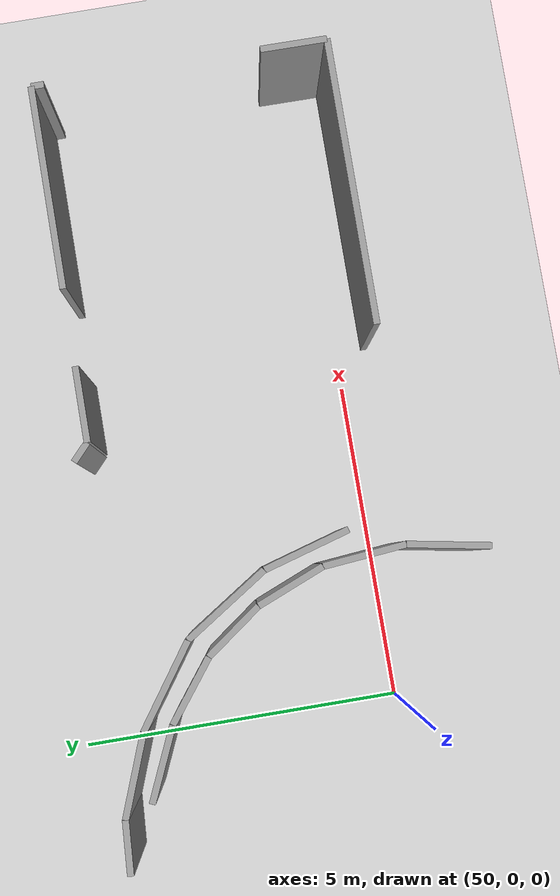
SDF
<sdf version="1.6">
 <world name="default">
  <model name="ground_plane">
   <static>1</static>
   <link name="link">
    <collision name="collision">
     <geometry><plane><normal>0 0 1</normal><size>100 100</size></plane></geometry>
     <surface><friction><ode><mu>100</mu><mu2>50</mu2></ode></friction></surface>
    </collision>
    <visual name="visual">
     <cast_shadows>0</cast_shadows>
     <geometry><plane><normal>0 0 1</normal><size>100 100</size></plane></geometry>
     <material>
      <script><uri>file://media/materials/scripts/gazebo.material</uri><name>Gazebo/Grey</name></script>
     </material>
    </visual>
   </link>
  </model>
  <model name="50041186">
   <static>1</static>
   <link name="Wall_160">
    <collision name="Wall_160_Collision">
     <geometry><box><size>1.1537353107 0.1 2.5</size></box></geometry>
     <pose>0.576867655352 0 1.25 0 0 0</pose>
    </collision>
    <visual name="Wall_160_Visual">
     <pose>0.576867655352 0 1.25 0 0 0</pose>
     <geometry><box><size>1.1537353107 0.1 2.5</size></box></geometry>
     <material>
      <script><uri>file://media/materials/scripts/gazebo.material</uri><name>Gazebo/Grey</name></script>
      <ambient>1 1 1 1</ambient>
     </material>
    </visual>
    <pose>109.183690306 -4.41377122005 0 0 0 -0.41728605494</pose>
   </link>
   <link name="Wall_161">
    <collision name="Wall_161_Collision">
     <geometry><box><size>1.09943733817 0.1 2.5</size></box></geometry>
     <pose>0.549718669087 0 1.25 0 0 0</pose>
    </collision>
    <visual name="Wall_161_Visual">
     <pose>0.549718669087 0 1.25 0 0 0</pose>
     <geometry><box><size>1.09943733817 0.1 2.5</size></box></geometry>
     <material>
      <script><uri>file://media/materials/scripts/gazebo.material</uri><name>Gazebo/Grey</name></script>
      <ambient>1 1 1 1</ambient>
     </material>
    </visual>
    <pose>110.238426146 -4.88135808345 0 0 0 -0.653013856082</pose>
   </link>
   <link name="Wall_162">
    <collision name="Wall_162_Collision">
     <geometry><box><size>1.02751432107 0.1 2.5</size></box></geometry>
     <pose>0.513757160534 0 1.25 0 0 0</pose>
    </collision>
    <visual name="Wall_162_Visual">
     <pose>0.513757160534 0 1.25 0 0 0</pose>
     <geometry><box><size>1.02751432107 0.1 2.5</size></box></geometry>
     <material>
      <script><uri>file://media/materials/scripts/gazebo.material</uri><name>Gazebo/Grey</name></script>
      <ambient>1 1 1 1</ambient>
     </material>
    </visual>
    <pose>111.111661114 -5.54935744883 0 0 0 -0.940710433335</pose>
   </link>
   <link name="Wall_163">
    <collision name="Wall_163_Collision">
     <geometry><box><size>1.09609186427 0.1 2.5</size></box></geometry>
     <pose>0.548045932135 0 1.25 0 0 0</pose>
    </collision>
    <visual name="Wall_163_Visual">
     <pose>0.548045932135 0 1.25 0 0 0</pose>
     <geometry><box><size>1.09609186427 0.1 2.5</size></box></geometry>
     <material>
      <script><uri>file://media/materials/scripts/gazebo.material</uri><name>Gazebo/Grey</name></script>
      <ambient>1 1 1 1</ambient>
     </material>
    </visual>
    <pose>111.717087101 -6.37956528637 0 0 0 -1.18620439022</pose>
   </link>
   <link name="Wall_164">
    <collision name="Wall_164_Collision">
     <geometry><box><size>1.25350013337 0.1 2.5</size></box></geometry>
     <pose>0.626750066684 0 1.25 0 0 0</pose>
    </collision>
    <visual name="Wall_164_Visual">
     <pose>0.626750066684 0 1.25 0 0 0</pose>
     <geometry><box><size>1.25350013337 0.1 2.5</size></box></geometry>
     <material>
      <script><uri>file://media/materials/scripts/gazebo.material</uri><name>Gazebo/Grey</name></script>
      <ambient>1 1 1 1</ambient>
     </material>
    </visual>
    <pose>112.128319848 -7.39558940187 0 0 0 -1.47852300548</pose>
   </link>
   <link name="Wall_165">
    <collision name="Wall_165_Collision">
     <geometry><box><size>1.24686918738 0.1 2.5</size></box></geometry>
     <pose>0.623434593692 0 1.25 0 0 0</pose>
    </collision>
    <visual name="Wall_165_Visual">
     <pose>0.623434593692 0 1.25 0 0 0</pose>
     <geometry><box><size>1.24686918738 0.1 2.5</size></box></geometry>
     <material>
      <script><uri>file://media/materials/scripts/gazebo.material</uri><name>Gazebo/Grey</name></script>
      <ambient>1 1 1 1</ambient>
     </material>
    </visual>
    <pose>112.243820403 -8.64375694114 0 0 0 -1.75196090721</pose>
   </link>
   <link name="Wall_186">
    <collision name="Wall_186_Collision">
     <geometry><box><size>4.36744407425 0.1 2.5</size></box></geometry>
     <pose>2.18372203713 0 1.25 0 0 0</pose>
    </collision>
    <visual name="Wall_186_Visual">
     <pose>2.18372203713 0 1.25 0 0 0</pose>
     <geometry><box><size>4.36744407425 0.1 2.5</size></box></geometry>
     <material>
      <script><uri>file://media/materials/scripts/gazebo.material</uri><name>Gazebo/Grey</name></script>
      <ambient>1 1 1 1</ambient>
     </material>
    </visual>
    <pose>119.861780105 -8.7743614152 0 0 0 3.14159265359</pose>
   </link>
   <link name="Wall_189">
    <collision name="Wall_189_Collision">
     <geometry><box><size>1.35960191555 0.1 2.5</size></box></geometry>
     <pose>0.679800957777 0 1.25 0 0 0</pose>
    </collision>
    <visual name="Wall_189_Visual">
     <pose>0.679800957777 0 1.25 0 0 0</pose>
     <geometry><box><size>1.35960191555 0.1 2.5</size></box></geometry>
     <material>
      <script><uri>file://media/materials/scripts/gazebo.material</uri><name>Gazebo/Grey</name></script>
      <ambient>1 1 1 1</ambient>
     </material>
    </visual>
    <pose>112.592860543 -7.85276852293 0 0 0 1.85173754716</pose>
   </link>
   <link name="Wall_190">
    <collision name="Wall_190_Collision">
     <geometry><box><size>1.49943821931 0.1 2.5</size></box></geometry>
     <pose>0.749719109654 0 1.25 0 0 0</pose>
    </collision>
    <visual name="Wall_190_Visual">
     <pose>0.749719109654 0 1.25 0 0 0</pose>
     <geometry><box><size>1.49943821931 0.1 2.5</size></box></geometry>
     <material>
      <script><uri>file://media/materials/scripts/gazebo.material</uri><name>Gazebo/Grey</name></script>
      <ambient>1 1 1 1</ambient>
     </material>
    </visual>
    <pose>112.215897192 -6.54646993495 0 0 0 2.14936103998</pose>
   </link>
   <link name="Wall_191">
    <collision name="Wall_191_Collision">
     <geometry><box><size>1.45806440451 0.1 2.5</size></box></geometry>
     <pose>0.729032202257 0 1.25 0 0 0</pose>
    </collision>
    <visual name="Wall_191_Visual">
     <pose>0.729032202257 0 1.25 0 0 0</pose>
     <geometry><box><size>1.45806440451 0.1 2.5</size></box></geometry>
     <material>
      <script><uri>file://media/materials/scripts/gazebo.material</uri><name>Gazebo/Grey</name></script>
      <ambient>1 1 1 1</ambient>
     </material>
    </visual>
    <pose>111.395970173 -5.29106774552 0 0 0 2.52615996905</pose>
   </link>
   <link name="Wall_192">
    <collision name="Wall_192_Collision">
     <geometry><box><size>1.26561071731 0.1 2.5</size></box></geometry>
     <pose>0.632805358655 0 1.25 0 0 0</pose>
    </collision>
    <visual name="Wall_192_Visual">
     <pose>0.632805358655 0 1.25 0 0 0</pose>
     <geometry><box><size>1.26561071731 0.1 2.5</size></box></geometry>
     <material>
      <script><uri>file://media/materials/scripts/gazebo.material</uri><name>Gazebo/Grey</name></script>
      <ambient>1 1 1 1</ambient>
     </material>
    </visual>
    <pose>110.205425988 -4.44930985245 0 0 0 2.7781269066</pose>
   </link>
   <link name="Wall_193">
    <collision name="Wall_193_Collision">
     <geometry><box><size>0.788506181591 0.1 2.5</size></box></geometry>
     <pose>0.394253090795 0 1.25 0 0 0</pose>
    </collision>
    <visual name="Wall_193_Visual">
     <pose>0.394253090795 0 1.25 0 0 0</pose>
     <geometry><box><size>0.788506181591 0.1 2.5</size></box></geometry>
     <material>
      <script><uri>file://media/materials/scripts/gazebo.material</uri><name>Gazebo/Grey</name></script>
      <ambient>1 1 1 1</ambient>
     </material>
    </visual>
    <pose>109.022497224 -3.99936538156 0 0 0 3.07829024759</pose>
   </link>
   <link name="Wall_196">
    <collision name="Wall_196_Collision">
     <geometry><box><size>0.343914503381 0.1 2.5</size></box></geometry>
     <pose>0.171957251691 0 1.25 0 0 0</pose>
    </collision>
    <visual name="Wall_196_Visual">
     <pose>0.171957251691 0 1.25 0 0 0</pose>
     <geometry><box><size>0.343914503381 0.1 2.5</size></box></geometry>
     <material>
      <script><uri>file://media/materials/scripts/gazebo.material</uri><name>Gazebo/Grey</name></script>
      <ambient>1 1 1 1</ambient>
     </material>
    </visual>
    <pose>114.217483738 -4.06942725686 0 0 0 -0.745982703717</pose>
   </link>
   <link name="Wall_197">
    <collision name="Wall_197_Collision">
     <geometry><box><size>1.13596699984 0.1 2.5</size></box></geometry>
     <pose>0.567983499921 0 1.25 0 0 0</pose>
    </collision>
    <visual name="Wall_197_Visual">
     <pose>0.567983499921 0 1.25 0 0 0</pose>
     <geometry><box><size>1.13596699984 0.1 2.5</size></box></geometry>
     <material>
      <script><uri>file://media/materials/scripts/gazebo.material</uri><name>Gazebo/Grey</name></script>
      <ambient>1 1 1 1</ambient>
     </material>
    </visual>
    <pose>114.470061875 -4.3028399175 0 0 0 0.0</pose>
   </link>
   <link name="Wall_198">
    <collision name="Wall_198_Collision">
     <geometry><box><size>3.09313025543 0.1 2.5</size></box></geometry>
     <pose>1.54656512772 0 1.25 0 0 0</pose>
    </collision>
    <visual name="Wall_198_Visual">
     <pose>1.54656512772 0 1.25 0 0 0</pose>
     <geometry><box><size>3.09313025543 0.1 2.5</size></box></geometry>
     <material>
      <script><uri>file://media/materials/scripts/gazebo.material</uri><name>Gazebo/Grey</name></script>
      <ambient>1 1 1 1</ambient>
     </material>
    </visual>
    <pose>116.77245756 -4.3028399175 0 0 0 0.0</pose>
   </link>
   <link name="Wall_199">
    <collision name="Wall_199_Collision">
     <geometry><box><size>0.195589401872 0.1 2.5</size></box></geometry>
     <pose>0.0977947009361 0 1.25 0 0 0</pose>
    </collision>
    <visual name="Wall_199_Visual">
     <pose>0.0977947009361 0 1.25 0 0 0</pose>
     <geometry><box><size>0.195589401872 0.1 2.5</size></box></geometry>
     <material>
      <script><uri>file://media/materials/scripts/gazebo.material</uri><name>Gazebo/Grey</name></script>
      <ambient>1 1 1 1</ambient>
     </material>
    </visual>
    <pose>119.865587815 -4.3028399175 0 0 0 -1.57079632679</pose>
   </link>
   <link name="Wall_200">
    <collision name="Wall_200_Collision">
     <geometry><box><size>1.00955818818 0.1 2.5</size></box></geometry>
     <pose>0.504779094089 0 1.25 0 0 0</pose>
    </collision>
    <visual name="Wall_200_Visual">
     <pose>0.504779094089 0 1.25 0 0 0</pose>
     <geometry><box><size>1.00955818818 0.1 2.5</size></box></geometry>
     <material>
      <script><uri>file://media/materials/scripts/gazebo.material</uri><name>Gazebo/Grey</name></script>
      <ambient>1 1 1 1</ambient>
     </material>
    </visual>
    <pose>119.865587815 -7.76481040774 0 0 0 -1.57456799611</pose>
   </link>
   <pose>-59.9 8.31532603522 0 0 0 0</pose>
  </model>
 </world>
</sdf>
